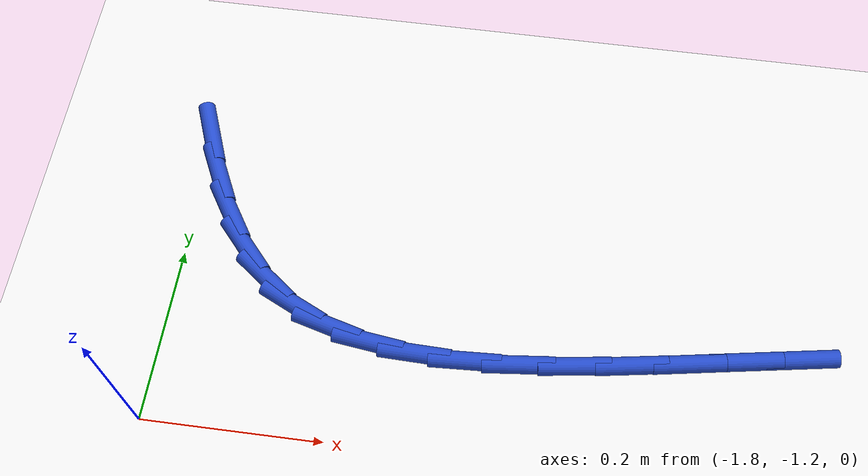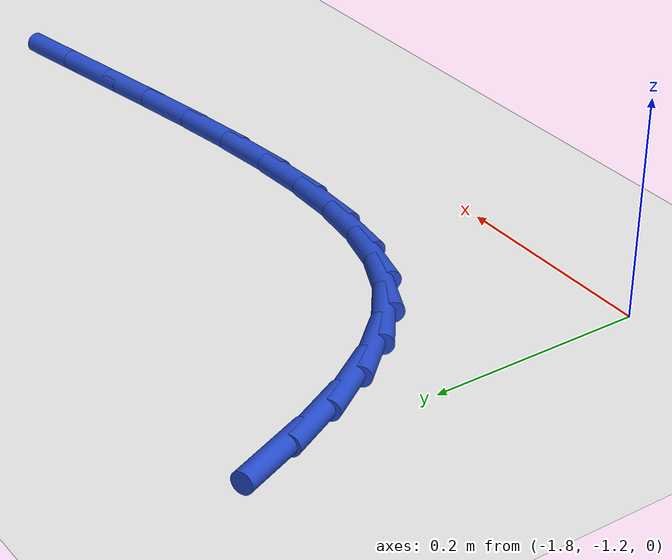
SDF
<sdf version="1.6">
 <world name="default">
  <model name="ground_plane">
   <static>1</static>
   <link name="link">
    <collision name="collision">
     <geometry><plane><normal>0 0 1</normal><size>100 100</size></plane></geometry>
     <surface><friction><ode><mu>100</mu><mu2>50</mu2></ode></friction></surface>
    </collision>
    <visual name="visual">
     <cast_shadows>0</cast_shadows>
     <geometry><plane><normal>0 0 1</normal><size>100 100</size></plane></geometry>
     <material>
      <script><uri>file://media/materials/scripts/gazebo.material</uri><name>Gazebo/WhiteGlow</name></script>
     </material>
    </visual>
   </link>
  </model>
  <model name="line">
   <link name="link_75">
    <pose>-1.8041242952322387 -0.8452931245942664 0.01 0 1.57 -1.182891194997727</pose>
    <collision name="collision">
     <geometry><cylinder><radius>0.01</radius><length>0.08</length></cylinder></geometry>
    </collision>
    <visual name="visual">
     <material>
      <script><name>Gazebo/Blue</name><uri>file://media/materials/scripts/gazebo.material</uri></script>
     </material>
     <geometry><cylinder><radius>0.01</radius><length>0.08</length></cylinder></geometry>
    </visual>
   </link>
   <link name="link_76">
    <pose>-1.7829275362548502 -0.8971686365786755 0.01 0 1.57 -1.101974101208902</pose>
    <collision name="collision">
     <geometry><cylinder><radius>0.01</radius><length>0.08</length></cylinder></geometry>
    </collision>
    <visual name="visual">
     <material>
      <script><name>Gazebo/Blue</name><uri>file://media/materials/scripts/gazebo.material</uri></script>
     </material>
     <geometry><cylinder><radius>0.01</radius><length>0.08</length></cylinder></geometry>
    </visual>
   </link>
   <link name="link_77">
    <pose>-1.7589299788314723 -0.9445492151265593 0.01 0 1.57 -0.9890649652443836</pose>
    <collision name="collision">
     <geometry><cylinder><radius>0.01</radius><length>0.08</length></cylinder></geometry>
    </collision>
    <visual name="visual">
     <material>
      <script><name>Gazebo/Blue</name><uri>file://media/materials/scripts/gazebo.material</uri></script>
     </material>
     <geometry><cylinder><radius>0.01</radius><length>0.08</length></cylinder></geometry>
    </visual>
   </link>
   <link name="link_78">
    <pose>-1.731350767627292 -0.9864854840153904 0.01 0 1.57 -0.8387061322006786</pose>
    <collision name="collision">
     <geometry><cylinder><radius>0.01</radius><length>0.08</length></cylinder></geometry>
    </collision>
    <visual name="visual">
     <material>
      <script><name>Gazebo/Blue</name><uri>file://media/materials/scripts/gazebo.material</uri></script>
     </material>
     <geometry><cylinder><radius>0.01</radius><length>0.08</length></cylinder></geometry>
    </visual>
   </link>
   <link name="link_79">
    <pose>-1.6994090473074988 -1.022028067022641 0.01 0 1.57 -0.6501245023676974</pose>
    <collision name="collision">
     <geometry><cylinder><radius>0.01</radius><length>0.08</length></cylinder></geometry>
    </collision>
    <visual name="visual">
     <material>
      <script><name>Gazebo/Blue</name><uri>file://media/materials/scripts/gazebo.material</uri></script>
     </material>
     <geometry><cylinder><radius>0.01</radius><length>0.08</length></cylinder></geometry>
    </visual>
   </link>
   <link name="link_80">
    <pose>-1.6623239675223698 -1.0502275940054098 0.01 0 1.57 -0.44267747149958564</pose>
    <collision name="collision">
     <geometry><cylinder><radius>0.01</radius><length>0.08</length></cylinder></geometry>
    </collision>
    <visual name="visual">
     <material>
      <script><name>Gazebo/Blue</name><uri>file://media/materials/scripts/gazebo.material</uri></script>
     </material>
     <geometry><cylinder><radius>0.01</radius><length>0.08</length></cylinder></geometry>
    </visual>
   </link>
   <link name="link_81">
    <pose>-1.619599093907698 -1.0704815576498166 0.01 0 1.57 -0.26522832971535554</pose>
    <collision name="collision">
     <geometry><cylinder><radius>0.01</radius><length>0.08</length></cylinder></geometry>
    </collision>
    <visual name="visual">
     <material>
      <script><name>Gazebo/Blue</name><uri>file://media/materials/scripts/gazebo.material</uri></script>
     </material>
     <geometry><cylinder><radius>0.01</radius><length>0.08</length></cylinder></geometry>
    </visual>
   </link>
   <link name="link_82">
    <pose>-1.5717882520477984 -1.0834683073993479 0.01 0 1.57 -0.1277720845893804</pose>
    <collision name="collision">
     <geometry><cylinder><radius>0.01</radius><length>0.08</length></cylinder></geometry>
    </collision>
    <visual name="visual">
     <material>
      <script><name>Gazebo/Blue</name><uri>file://media/materials/scripts/gazebo.material</uri></script>
     </material>
     <geometry><cylinder><radius>0.01</radius><length>0.08</length></cylinder></geometry>
    </visual>
   </link>
   <link name="link_83">
    <pose>-1.5196876364720584 -1.090161776568433 0.01 0 1.57 -0.024711971827121215</pose>
    <collision name="collision">
     <geometry><cylinder><radius>0.01</radius><length>0.08</length></cylinder></geometry>
    </collision>
    <visual name="visual">
     <material>
      <script><name>Gazebo/Blue</name><uri>file://media/materials/scripts/gazebo.material</uri></script>
     </material>
     <geometry><cylinder><radius>0.01</radius><length>0.08</length></cylinder></geometry>
    </visual>
   </link>
   <link name="link_84">
    <pose>-1.4640934417098692 -1.0915358984715016 0.01 0 1.57 0.05092884267587837</pose>
    <collision name="collision">
     <geometry><cylinder><radius>0.01</radius><length>0.08</length></cylinder></geometry>
    </collision>
    <visual name="visual">
     <material>
      <script><name>Gazebo/Blue</name><uri>file://media/materials/scripts/gazebo.material</uri></script>
     </material>
     <geometry><cylinder><radius>0.01</radius><length>0.08</length></cylinder></geometry>
    </visual>
   </link>
   <link name="link_85">
    <pose>-1.4058018622906188 -1.0885646064229821 0.01 0 1.57 0.10498688998643793</pose>
    <collision name="collision">
     <geometry><cylinder><radius>0.01</radius><length>0.08</length></cylinder></geometry>
    </collision>
    <visual name="visual">
     <material>
      <script><name>Gazebo/Blue</name><uri>file://media/materials/scripts/gazebo.material</uri></script>
     </material>
     <geometry><cylinder><radius>0.01</radius><length>0.08</length></cylinder></geometry>
    </visual>
   </link>
   <link name="link_86">
    <pose>-1.3456090927436983 -1.0822218337373033 0.01 0 1.57 0.14163319308610733</pose>
    <collision name="collision">
     <geometry><cylinder><radius>0.01</radius><length>0.08</length></cylinder></geometry>
    </collision>
    <visual name="visual">
     <material>
      <script><name>Gazebo/Blue</name><uri>file://media/materials/scripts/gazebo.material</uri></script>
     </material>
     <geometry><cylinder><radius>0.01</radius><length>0.08</length></cylinder></geometry>
    </visual>
   </link>
   <link name="link_87">
    <pose>-1.2843113275984968 -1.0734815137288944 0.01 0 1.57 0.1635084560057243</pose>
    <collision name="collision">
     <geometry><cylinder><radius>0.01</radius><length>0.08</length></cylinder></geometry>
    </collision>
    <visual name="visual">
     <material>
      <script><name>Gazebo/Blue</name><uri>file://media/materials/scripts/gazebo.material</uri></script>
     </material>
     <geometry><cylinder><radius>0.01</radius><length>0.08</length></cylinder></geometry>
    </visual>
   </link>
   <link name="link_88">
    <pose>-1.2227047613844033 -1.0633175797121839 0.01 0 1.57 0.17193984819233601</pose>
    <collision name="collision">
     <geometry><cylinder><radius>0.01</radius><length>0.08</length></cylinder></geometry>
    </collision>
    <visual name="visual">
     <material>
      <script><name>Gazebo/Blue</name><uri>file://media/materials/scripts/gazebo.material</uri></script>
     </material>
     <geometry><cylinder><radius>0.01</radius><length>0.08</length></cylinder></geometry>
    </visual>
   </link>
   <link name="link_89">
    <pose>-1.1615855853263664 -1.0527039598901533 0.01 0 1.57 0.17037846723260347</pose>
    <collision name="collision">
     <geometry><cylinder><radius>0.01</radius><length>0.08</length></cylinder></geometry>
    </collision>
    <visual name="visual">
     <material>
      <script><name>Gazebo/Blue</name><uri>file://media/materials/scripts/gazebo.material</uri></script>
     </material>
     <geometry><cylinder><radius>0.01</radius><length>0.08</length></cylinder></geometry>
    </visual>
   </link>
   <link name="link_90">
    <pose>-1.1016007864715316 -1.042383787192962 0.01 0 1.57 0.17074767244799977</pose>
    <collision name="collision">
     <geometry><cylinder><radius>0.01</radius><length>0.08</length></cylinder></geometry>
    </collision>
    <visual name="visual">
     <material>
      <script><name>Gazebo/Blue</name><uri>file://media/materials/scripts/gazebo.material</uri></script>
     </material>
     <geometry><cylinder><radius>0.01</radius><length>0.08</length></cylinder></geometry>
    </visual>
   </link>
  </model>
 </world>
</sdf>
